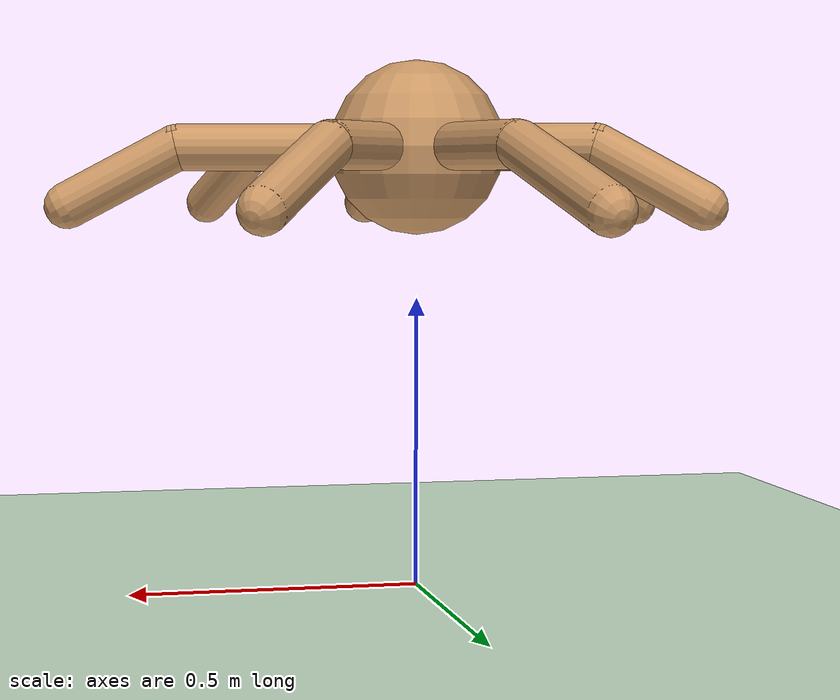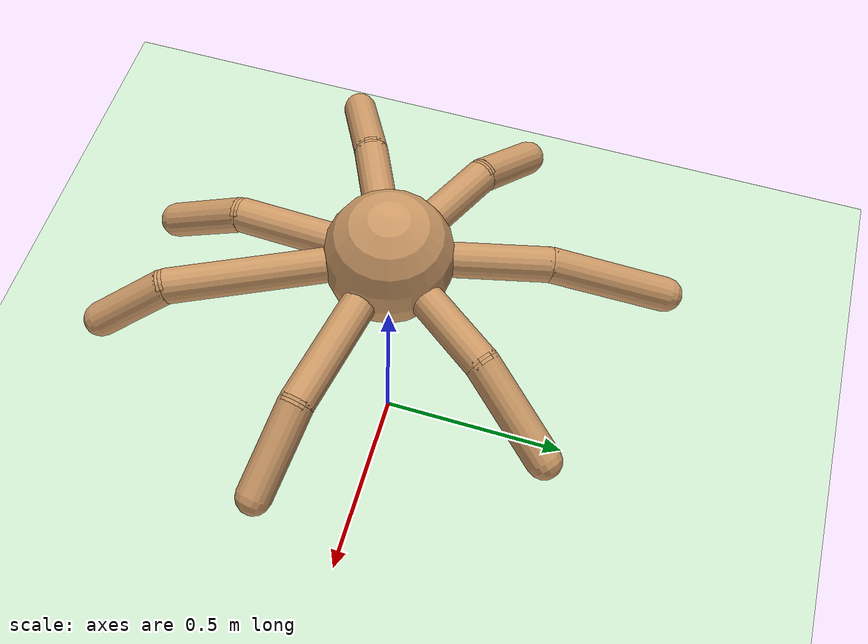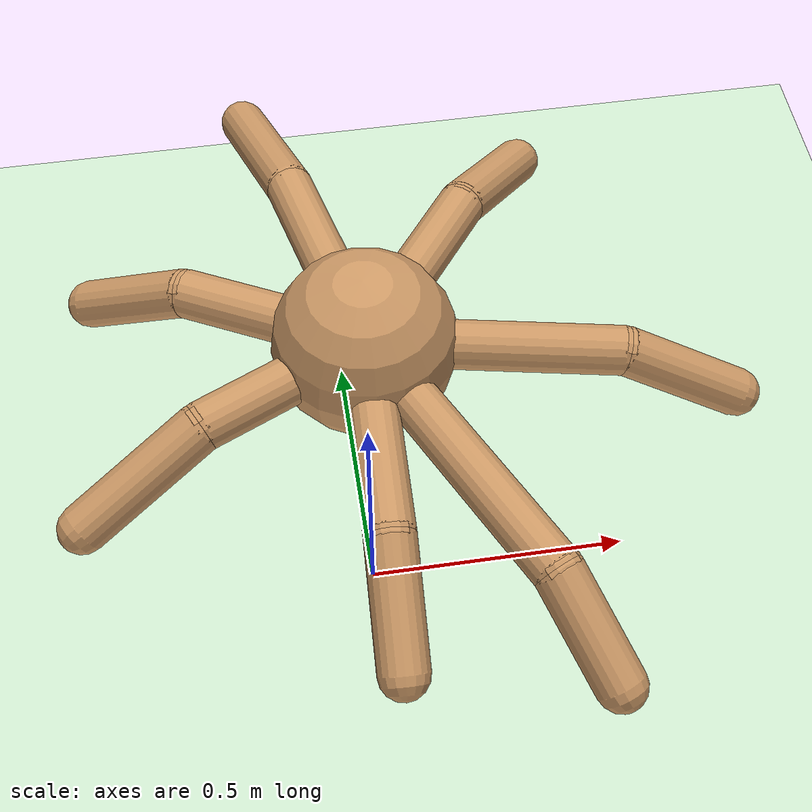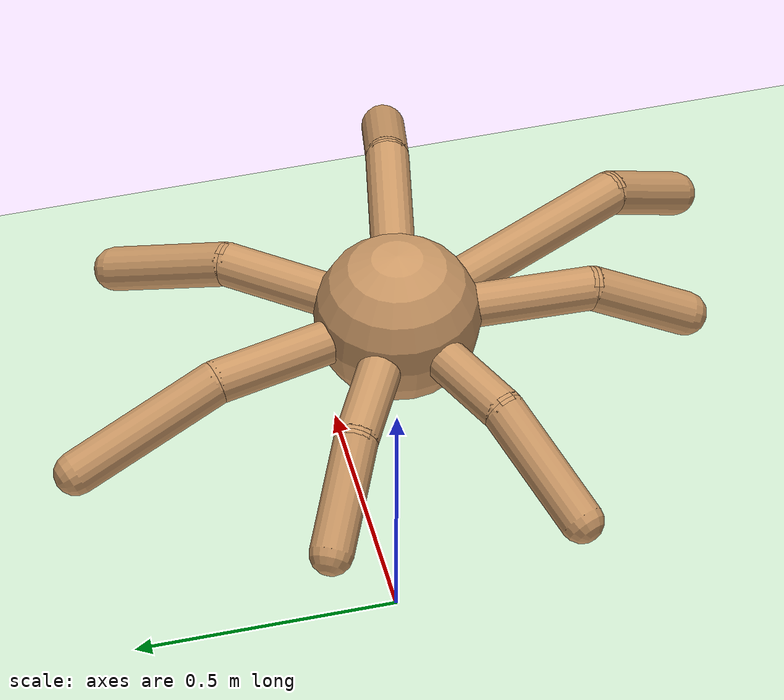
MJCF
<mujoco model="mutant_ant">
  <compiler angle="degree" coordinate="local" inertiafromgeom="true"/>
  <option integrator="RK4" timestep="0.01"/>
  <default>
    <joint armature="1" damping="1" limited="true"/>
    <geom conaffinity="1" condim="3" density="5.0" friction="1 0.5 0.5" margin="0.01" rgba="0.8 0.6 0.4 1"/>
  </default>
  <asset>
    <texture builtin="checker" height="512" name="texplane" rgb1=".2 .3 .4" rgb2=".1 0.15 0.2" type="2d" width="512"/>
    <material name="MatPlane" reflectance="0.5" shininess="1" specular="1" texrepeat="60 60" texture="texplane"/>
  </asset>
  <worldbody>
    <light cutoff="100" diffuse="1 1 1" dir="-0 0 -1.3" directional="true" exponent="1" pos="0 0 1.3" specular=".1 .1 .1"/>
    <geom conaffinity="1" condim="3" material="MatPlane" name="floor" pos="0 0 0" rgba="0.8 0.9 0.8 1" size="40 40 40" type="plane"/>
    <body name="torso" pos="0 0 0.760">
      <camera name="track" mode="trackcom" pos="0 -3 2.0" euler="60 0 0"/>
      <freejoint name="root"/>
      <geom name="torso_geom" pos="0 0 0" size="0.15" type="sphere"/>
      <body name="leg_0" pos="0 0 0" euler="0 0 -11.132">
        <geom fromto="0.0 0.0 0.0 0.1 0.0 0.0" name="aux_0_geom" size="0.04" type="capsule"/>
        <body name="leg_0_aux" pos="0.1 0.0 0">
          <joint axis="0 0 1" name="hip_0" pos="0.0 0.0 0.0" range="-25.651 33.128" type="hinge"/>
          <geom fromto="0.0 0.0 0.0 0.312 0.0 0.0" name="thigh_0_geom" size="0.04" type="capsule"/>
          <body pos="0.312 0.0 0" name="leg_0_ankle">
            <joint axis="0 1 0" name="ankle_0" pos="0.0 0.0 0.0" range="28.593 60.263" type="hinge"/>
            <geom fromto="0.0 0.0 0.0 0.189 0.0 -0.1" name="calf_0_geom" size="0.04" type="capsule"/>
          </body>
        </body>
      </body>
      <body name="leg_1" pos="0 0 0" euler="0 0 52.913">
        <geom fromto="0.0 0.0 0.0 0.1 0.0 0.0" name="aux_1_geom" size="0.04" type="capsule"/>
        <body name="leg_1_aux" pos="0.1 0.0 0">
          <joint axis="0 0 1" name="hip_1" pos="0.0 0.0 0.0" range="-34.138 25.559" type="hinge"/>
          <geom fromto="0.0 0.0 0.0 0.234 0.0 0.0" name="thigh_1_geom" size="0.04" type="capsule"/>
          <body pos="0.234 0.0 0" name="leg_1_ankle">
            <joint axis="0 1 0" name="ankle_1" pos="0.0 0.0 0.0" range="34.793 58.003" type="hinge"/>
            <geom fromto="0.0 0.0 0.0 0.223 0.0 -0.1" name="calf_1_geom" size="0.04" type="capsule"/>
          </body>
        </body>
      </body>
      <body name="leg_2" pos="0 0 0" euler="0 0 103.455">
        <geom fromto="0.0 0.0 0.0 0.1 0.0 0.0" name="aux_2_geom" size="0.04" type="capsule"/>
        <body name="leg_2_aux" pos="0.1 0.0 0">
          <joint axis="0 0 1" name="hip_2" pos="0.0 0.0 0.0" range="-22.314 17.550" type="hinge"/>
          <geom fromto="0.0 0.0 0.0 0.259 0.0 0.0" name="thigh_2_geom" size="0.04" type="capsule"/>
          <body pos="0.259 0.0 0" name="leg_2_ankle">
            <joint axis="0 1 0" name="ankle_2" pos="0.0 0.0 0.0" range="29.091 70.088" type="hinge"/>
            <geom fromto="0.0 0.0 0.0 0.275 0.0 -0.1" name="calf_2_geom" size="0.04" type="capsule"/>
          </body>
        </body>
      </body>
      <body name="leg_3" pos="0 0 0" euler="0 0 152.973">
        <geom fromto="0.0 0.0 0.0 0.1 0.0 0.0" name="aux_3_geom" size="0.04" type="capsule"/>
        <body name="leg_3_aux" pos="0.1 0.0 0">
          <joint axis="0 0 1" name="hip_3" pos="0.0 0.0 0.0" range="-28.661 32.983" type="hinge"/>
          <geom fromto="0.0 0.0 0.0 0.211 0.0 0.0" name="thigh_3_geom" size="0.04" type="capsule"/>
          <body pos="0.211 0.0 0" name="leg_3_ankle">
            <joint axis="0 1 0" name="ankle_3" pos="0.0 0.0 0.0" range="41.726 87.144" type="hinge"/>
            <geom fromto="0.0 0.0 0.0 0.182 0.0 -0.1" name="calf_3_geom" size="0.04" type="capsule"/>
          </body>
        </body>
      </body>
      <body name="leg_4" pos="0 0 0" euler="0 0 204.940">
        <geom fromto="0.0 0.0 0.0 0.1 0.0 0.0" name="aux_4_geom" size="0.04" type="capsule"/>
        <body name="leg_4_aux" pos="0.1 0.0 0">
          <joint axis="0 0 1" name="hip_4" pos="0.0 0.0 0.0" range="-28.879 26.234" type="hinge"/>
          <geom fromto="0.0 0.0 0.0 0.197 0.0 0.0" name="thigh_4_geom" size="0.04" type="capsule"/>
          <body pos="0.197 0.0 0" name="leg_4_ankle">
            <joint axis="0 1 0" name="ankle_4" pos="0.0 0.0 0.0" range="47.680 99.155" type="hinge"/>
            <geom fromto="0.0 0.0 0.0 0.218 0.0 -0.1" name="calf_4_geom" size="0.04" type="capsule"/>
          </body>
        </body>
      </body>
      <body name="leg_5" pos="0 0 0" euler="0 0 268.195">
        <geom fromto="0.0 0.0 0.0 0.1 0.0 0.0" name="aux_5_geom" size="0.04" type="capsule"/>
        <body name="leg_5_aux" pos="0.1 0.0 0">
          <joint axis="0 0 1" name="hip_5" pos="0.0 0.0 0.0" range="-26.709 26.950" type="hinge"/>
          <geom fromto="0.0 0.0 0.0 0.255 0.0 0.0" name="thigh_5_geom" size="0.04" type="capsule"/>
          <body pos="0.255 0.0 0" name="leg_5_ankle">
            <joint axis="0 1 0" name="ankle_5" pos="0.0 0.0 0.0" range="29.904 85.232" type="hinge"/>
            <geom fromto="0.0 0.0 0.0 0.175 0.0 -0.1" name="calf_5_geom" size="0.04" type="capsule"/>
          </body>
        </body>
      </body>
      <body name="leg_6" pos="0 0 0" euler="0 0 295.893">
        <geom fromto="0.0 0.0 0.0 0.1 0.0 0.0" name="aux_6_geom" size="0.04" type="capsule"/>
        <body name="leg_6_aux" pos="0.1 0.0 0">
          <joint axis="0 0 1" name="hip_6" pos="0.0 0.0 0.0" range="-38.731 32.665" type="hinge"/>
          <geom fromto="0.0 0.0 0.0 0.400 0.0 0.0" name="thigh_6_geom" size="0.04" type="capsule"/>
          <body pos="0.400 0.0 0" name="leg_6_ankle">
            <joint axis="0 1 0" name="ankle_6" pos="0.0 0.0 0.0" range="24.534 68.656" type="hinge"/>
            <geom fromto="0.0 0.0 0.0 0.160 0.0 -0.1" name="calf_6_geom" size="0.04" type="capsule"/>
          </body>
        </body>
      </body>
    </body>
  </worldbody>
  <actuator>
    <motor ctrllimited="true" ctrlrange="-1.0 1.0" joint="hip_0" gear="30"/>
    <motor ctrllimited="true" ctrlrange="-1.0 1.0" joint="ankle_0" gear="30"/>
    <motor ctrllimited="true" ctrlrange="-1.0 1.0" joint="hip_1" gear="30"/>
    <motor ctrllimited="true" ctrlrange="-1.0 1.0" joint="ankle_1" gear="30"/>
    <motor ctrllimited="true" ctrlrange="-1.0 1.0" joint="hip_2" gear="30"/>
    <motor ctrllimited="true" ctrlrange="-1.0 1.0" joint="ankle_2" gear="30"/>
    <motor ctrllimited="true" ctrlrange="-1.0 1.0" joint="hip_3" gear="30"/>
    <motor ctrllimited="true" ctrlrange="-1.0 1.0" joint="ankle_3" gear="30"/>
    <motor ctrllimited="true" ctrlrange="-1.0 1.0" joint="hip_4" gear="30"/>
    <motor ctrllimited="true" ctrlrange="-1.0 1.0" joint="ankle_4" gear="30"/>
    <motor ctrllimited="true" ctrlrange="-1.0 1.0" joint="hip_5" gear="30"/>
    <motor ctrllimited="true" ctrlrange="-1.0 1.0" joint="ankle_5" gear="30"/>
    <motor ctrllimited="true" ctrlrange="-1.0 1.0" joint="hip_6" gear="30"/>
    <motor ctrllimited="true" ctrlrange="-1.0 1.0" joint="ankle_6" gear="30"/>
  </actuator>
</mujoco>
